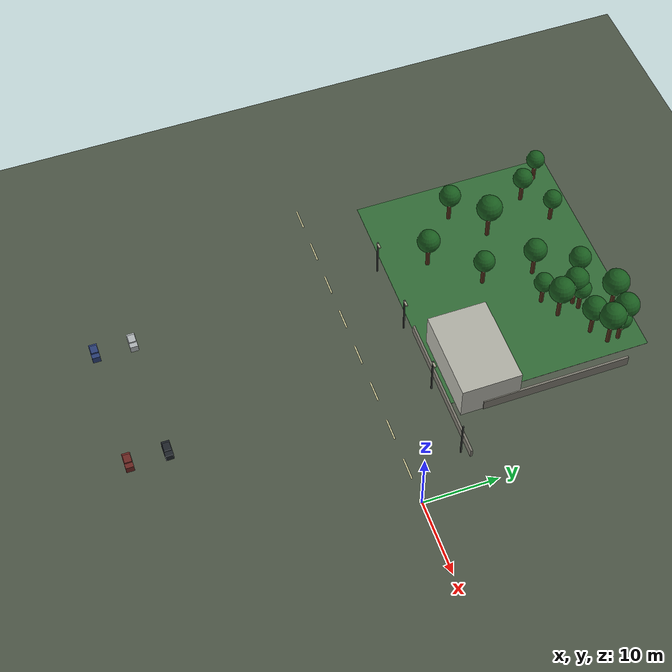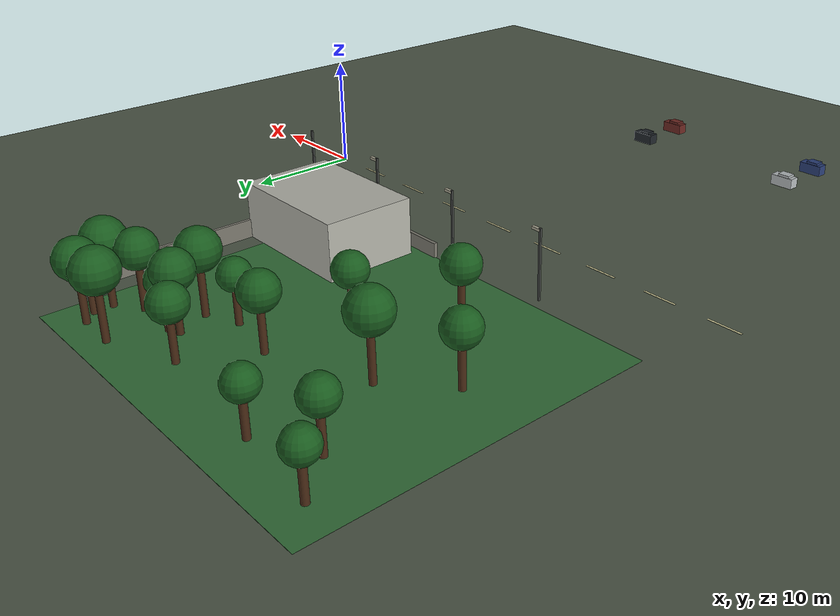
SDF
<sdf version="1.9">
 <world name="gsi_search_world_v2_suburban">
  <model name="ground_plane">
   <static>true</static>
   <link name="link">
    <collision name="collision">
     <geometry><plane><normal>0 0 1</normal><size>130 110</size></plane></geometry>
    </collision>
    <visual name="visual">
     <geometry><plane><normal>0 0 1</normal><size>130 110</size></plane></geometry>
     <material>
      <ambient>0.3 0.34 0.28 1</ambient>
      <diffuse>0.3 0.34 0.28 1</diffuse>
      <specular>0.12 0.12 0.12 1</specular>
     </material>
    </visual>
   </link>
  </model>
  <model name="semantic-community-park">
   <static>true</static>
   <pose>-29 22 0.015 0 0 0</pose>
   <link name="link">
    <visual name="visual">
     <geometry><box><size>34 28 0.02</size></box></geometry>
     <cast_shadows>false</cast_shadows>
     <material>
      <ambient>0.2 0.43 0.22 1</ambient>
      <diffuse>0.2 0.43 0.22 1</diffuse>
      <specular>0.12 0.12 0.12 1</specular>
     </material>
    </visual>
   </link>
  </model>
  <model name="main-street-marking-01">
   <static>true</static>
   <pose>-47 0 0.04 0 0 0</pose>
   <link name="link">
    <visual name="visual">
     <geometry><box><size>3 0.18 0.025</size></box></geometry>
     <cast_shadows>false</cast_shadows>
     <material>
      <ambient>0.92 0.9 0.68 1</ambient>
      <diffuse>0.92 0.9 0.68 1</diffuse>
      <specular>0.12 0.12 0.12 1</specular>
     </material>
    </visual>
   </link>
  </model>
  <model name="main-street-marking-02">
   <static>true</static>
   <pose>-41 0 0.04 0 0 0</pose>
   <link name="link">
    <visual name="visual">
     <geometry><box><size>3 0.18 0.025</size></box></geometry>
     <cast_shadows>false</cast_shadows>
     <material>
      <ambient>0.92 0.9 0.68 1</ambient>
      <diffuse>0.92 0.9 0.68 1</diffuse>
      <specular>0.12 0.12 0.12 1</specular>
     </material>
    </visual>
   </link>
  </model>
  <model name="main-street-marking-03">
   <static>true</static>
   <pose>-35 0 0.04 0 0 0</pose>
   <link name="link">
    <visual name="visual">
     <geometry><box><size>3 0.18 0.025</size></box></geometry>
     <cast_shadows>false</cast_shadows>
     <material>
      <ambient>0.92 0.9 0.68 1</ambient>
      <diffuse>0.92 0.9 0.68 1</diffuse>
      <specular>0.12 0.12 0.12 1</specular>
     </material>
    </visual>
   </link>
  </model>
  <model name="main-street-marking-04">
   <static>true</static>
   <pose>-29 0 0.04 0 0 0</pose>
   <link name="link">
    <visual name="visual">
     <geometry><box><size>3 0.18 0.025</size></box></geometry>
     <cast_shadows>false</cast_shadows>
     <material>
      <ambient>0.92 0.9 0.68 1</ambient>
      <diffuse>0.92 0.9 0.68 1</diffuse>
      <specular>0.12 0.12 0.12 1</specular>
     </material>
    </visual>
   </link>
  </model>
  <model name="main-street-marking-05">
   <static>true</static>
   <pose>-23 0 0.04 0 0 0</pose>
   <link name="link">
    <visual name="visual">
     <geometry><box><size>3 0.18 0.025</size></box></geometry>
     <cast_shadows>false</cast_shadows>
     <material>
      <ambient>0.92 0.9 0.68 1</ambient>
      <diffuse>0.92 0.9 0.68 1</diffuse>
      <specular>0.12 0.12 0.12 1</specular>
     </material>
    </visual>
   </link>
  </model>
  <model name="main-street-marking-06">
   <static>true</static>
   <pose>-17 0 0.04 0 0 0</pose>
   <link name="link">
    <visual name="visual">
     <geometry><box><size>3 0.18 0.025</size></box></geometry>
     <cast_shadows>false</cast_shadows>
     <material>
      <ambient>0.92 0.9 0.68 1</ambient>
      <diffuse>0.92 0.9 0.68 1</diffuse>
      <specular>0.12 0.12 0.12 1</specular>
     </material>
    </visual>
   </link>
  </model>
  <model name="main-street-marking-07">
   <static>true</static>
   <pose>-11 0 0.04 0 0 0</pose>
   <link name="link">
    <visual name="visual">
     <geometry><box><size>3 0.18 0.025</size></box></geometry>
     <cast_shadows>false</cast_shadows>
     <material>
      <ambient>0.92 0.9 0.68 1</ambient>
      <diffuse>0.92 0.9 0.68 1</diffuse>
      <specular>0.12 0.12 0.12 1</specular>
     </material>
    </visual>
   </link>
  </model>
  <model name="main-street-marking-08">
   <static>true</static>
   <pose>-5 0 0.04 0 0 0</pose>
   <link name="link">
    <visual name="visual">
     <geometry><box><size>3 0.18 0.025</size></box></geometry>
     <cast_shadows>false</cast_shadows>
     <material>
      <ambient>0.92 0.9 0.68 1</ambient>
      <diffuse>0.92 0.9 0.68 1</diffuse>
      <specular>0.12 0.12 0.12 1</specular>
     </material>
    </visual>
   </link>
  </model>
  <model name="clinic">
   <static>true</static>
   <pose>-16 13 2.5 0 0 0</pose>
   <link name="link">
    <collision name="collision"><geometry><box><size>12 8 5</size></box></geometry></collision>
    <visual name="visual">
     <geometry><box><size>12 8 5</size></box></geometry>
     <material>
      <ambient>0.7 0.7 0.66 1</ambient>
      <diffuse>0.7 0.7 0.66 1</diffuse>
      <specular>0.12 0.12 0.12 1</specular>
     </material>
    </visual>
   </link>
  </model>
  <model name="tree-01">
   <static>true</static>
   <pose>-43.0503 33.2513 0 0 0 0</pose>
   <link name="tree">
    <collision name="trunk_collision">
     <pose>0 0 1.77965 0 0 0</pose>
     <geometry><cylinder><radius>0.32</radius><length>3.5593</length></cylinder></geometry>
    </collision>
    <visual name="trunk">
     <pose>0 0 1.77965 0 0 0</pose>
     <geometry><cylinder><radius>0.28</radius><length>3.5593</length></cylinder></geometry>
     <material>
      <ambient>0.28 0.16 0.08 1</ambient>
      <diffuse>0.28 0.16 0.08 1</diffuse>
      <specular>0.12 0.12 0.12 1</specular>
     </material>
    </visual>
    <visual name="canopy">
     <pose>0 0 3.96608 0 0 0</pose>
     <geometry><sphere><radius>1.27118</radius></sphere></geometry>
     <material>
      <ambient>0.1 0.36 0.12 1</ambient>
      <diffuse>0.1 0.36 0.12 1</diffuse>
      <specular>0.12 0.12 0.12 1</specular>
     </material>
    </visual>
   </link>
  </model>
  <model name="tree-02">
   <static>true</static>
   <pose>-14.1679 32.7218 0 0 0 0</pose>
   <link name="tree">
    <collision name="trunk_collision">
     <pose>0 0 1.84661 0 0 0</pose>
     <geometry><cylinder><radius>0.32</radius><length>3.69322</length></cylinder></geometry>
    </collision>
    <visual name="trunk">
     <pose>0 0 1.84661 0 0 0</pose>
     <geometry><cylinder><radius>0.28</radius><length>3.69322</length></cylinder></geometry>
     <material>
      <ambient>0.28 0.16 0.08 1</ambient>
      <diffuse>0.28 0.16 0.08 1</diffuse>
      <specular>0.12 0.12 0.12 1</specular>
     </material>
    </visual>
    <visual name="canopy">
     <pose>0 0 4.1153 0 0 0</pose>
     <geometry><sphere><radius>1.31901</radius></sphere></geometry>
     <material>
      <ambient>0.1 0.36 0.12 1</ambient>
      <diffuse>0.1 0.36 0.12 1</diffuse>
      <specular>0.12 0.12 0.12 1</specular>
     </material>
    </visual>
   </link>
  </model>
  <model name="tree-03">
   <static>true</static>
   <pose>-28.512 19.5587 0 0 0 0</pose>
   <link name="tree">
    <collision name="trunk_collision">
     <pose>0 0 2.00519 0 0 0</pose>
     <geometry><cylinder><radius>0.32</radius><length>4.01039</length></cylinder></geometry>
    </collision>
    <visual name="trunk">
     <pose>0 0 2.00519 0 0 0</pose>
     <geometry><cylinder><radius>0.28</radius><length>4.01039</length></cylinder></geometry>
     <material>
      <ambient>0.28 0.16 0.08 1</ambient>
      <diffuse>0.28 0.16 0.08 1</diffuse>
      <specular>0.12 0.12 0.12 1</specular>
     </material>
    </visual>
    <visual name="canopy">
     <pose>0 0 4.46872 0 0 0</pose>
     <geometry><sphere><radius>1.43228</radius></sphere></geometry>
     <material>
      <ambient>0.1 0.36 0.12 1</ambient>
      <diffuse>0.1 0.36 0.12 1</diffuse>
      <specular>0.12 0.12 0.12 1</specular>
     </material>
    </visual>
   </link>
  </model>
  <model name="tree-04">
   <static>true</static>
   <pose>-20.3094 29.8655 0 0 0 0</pose>
   <link name="tree">
    <collision name="trunk_collision">
     <pose>0 0 1.84437 0 0 0</pose>
     <geometry><cylinder><radius>0.32</radius><length>3.68873</length></cylinder></geometry>
    </collision>
    <visual name="trunk">
     <pose>0 0 1.84437 0 0 0</pose>
     <geometry><cylinder><radius>0.28</radius><length>3.68873</length></cylinder></geometry>
     <material>
      <ambient>0.28 0.16 0.08 1</ambient>
      <diffuse>0.28 0.16 0.08 1</diffuse>
      <specular>0.12 0.12 0.12 1</specular>
     </material>
    </visual>
    <visual name="canopy">
     <pose>0 0 4.1103 0 0 0</pose>
     <geometry><sphere><radius>1.3174</radius></sphere></geometry>
     <material>
      <ambient>0.1 0.36 0.12 1</ambient>
      <diffuse>0.1 0.36 0.12 1</diffuse>
      <specular>0.12 0.12 0.12 1</specular>
     </material>
    </visual>
   </link>
  </model>
  <model name="tree-05">
   <static>true</static>
   <pose>-27.6826 26.4642 0 0 0 0</pose>
   <link name="tree">
    <collision name="trunk_collision">
     <pose>0 0 2.19856 0 0 0</pose>
     <geometry><cylinder><radius>0.32</radius><length>4.39712</length></cylinder></geometry>
    </collision>
    <visual name="trunk">
     <pose>0 0 2.19856 0 0 0</pose>
     <geometry><cylinder><radius>0.28</radius><length>4.39712</length></cylinder></geometry>
     <material>
      <ambient>0.28 0.16 0.08 1</ambient>
      <diffuse>0.28 0.16 0.08 1</diffuse>
      <specular>0.12 0.12 0.12 1</specular>
     </material>
    </visual>
    <visual name="canopy">
     <pose>0 0 4.89965 0 0 0</pose>
     <geometry><sphere><radius>1.5704</radius></sphere></geometry>
     <material>
      <ambient>0.1 0.36 0.12 1</ambient>
      <diffuse>0.1 0.36 0.12 1</diffuse>
      <specular>0.12 0.12 0.12 1</specular>
     </material>
    </visual>
   </link>
  </model>
  <model name="tree-06">
   <static>true</static>
   <pose>-40.3562 19.3867 0 0 0 0</pose>
   <link name="tree">
    <collision name="trunk_collision">
     <pose>0 0 2.09253 0 0 0</pose>
     <geometry><cylinder><radius>0.32</radius><length>4.18506</length></cylinder></geometry>
    </collision>
    <visual name="trunk">
     <pose>0 0 2.09253 0 0 0</pose>
     <geometry><cylinder><radius>0.28</radius><length>4.18506</length></cylinder></geometry>
     <material>
      <ambient>0.28 0.16 0.08 1</ambient>
      <diffuse>0.28 0.16 0.08 1</diffuse>
      <specular>0.12 0.12 0.12 1</specular>
     </material>
    </visual>
    <visual name="canopy">
     <pose>0 0 4.66335 0 0 0</pose>
     <geometry><sphere><radius>1.49466</radius></sphere></geometry>
     <material>
      <ambient>0.1 0.36 0.12 1</ambient>
      <diffuse>0.1 0.36 0.12 1</diffuse>
      <specular>0.12 0.12 0.12 1</specular>
     </material>
    </visual>
   </link>
  </model>
  <model name="tree-07">
   <static>true</static>
   <pose>-16.2769 29.7383 0 0 0 0</pose>
   <link name="tree">
    <collision name="trunk_collision">
     <pose>0 0 2.28356 0 0 0</pose>
     <geometry><cylinder><radius>0.32</radius><length>4.56713</length></cylinder></geometry>
    </collision>
    <visual name="trunk">
     <pose>0 0 2.28356 0 0 0</pose>
     <geometry><cylinder><radius>0.28</radius><length>4.56713</length></cylinder></geometry>
     <material>
      <ambient>0.28 0.16 0.08 1</ambient>
      <diffuse>0.28 0.16 0.08 1</diffuse>
      <specular>0.12 0.12 0.12 1</specular>
     </material>
    </visual>
    <visual name="canopy">
     <pose>0 0 5.08909 0 0 0</pose>
     <geometry><sphere><radius>1.63112</radius></sphere></geometry>
     <material>
      <ambient>0.1 0.36 0.12 1</ambient>
      <diffuse>0.1 0.36 0.12 1</diffuse>
      <specular>0.12 0.12 0.12 1</specular>
     </material>
    </visual>
   </link>
  </model>
  <model name="tree-08">
   <static>true</static>
   <pose>-35.5944 32.5297 0 0 0 0</pose>
   <link name="tree">
    <collision name="trunk_collision">
     <pose>0 0 1.81568 0 0 0</pose>
     <geometry><cylinder><radius>0.32</radius><length>3.63136</length></cylinder></geometry>
    </collision>
    <visual name="trunk">
     <pose>0 0 1.81568 0 0 0</pose>
     <geometry><cylinder><radius>0.28</radius><length>3.63136</length></cylinder></geometry>
     <material>
      <ambient>0.28 0.16 0.08 1</ambient>
      <diffuse>0.28 0.16 0.08 1</diffuse>
      <specular>0.12 0.12 0.12 1</specular>
     </material>
    </visual>
    <visual name="canopy">
     <pose>0 0 4.04637 0 0 0</pose>
     <geometry><sphere><radius>1.29691</radius></sphere></geometry>
     <material>
      <ambient>0.1 0.36 0.12 1</ambient>
      <diffuse>0.1 0.36 0.12 1</diffuse>
      <specular>0.12 0.12 0.12 1</specular>
     </material>
    </visual>
   </link>
  </model>
  <model name="tree-09">
   <static>true</static>
   <pose>-33.8652 13.7672 0 0 0 0</pose>
   <link name="tree">
    <collision name="trunk_collision">
     <pose>0 0 2.19346 0 0 0</pose>
     <geometry><cylinder><radius>0.32</radius><length>4.38692</length></cylinder></geometry>
    </collision>
    <visual name="trunk">
     <pose>0 0 2.19346 0 0 0</pose>
     <geometry><cylinder><radius>0.28</radius><length>4.38692</length></cylinder></geometry>
     <material>
      <ambient>0.28 0.16 0.08 1</ambient>
      <diffuse>0.28 0.16 0.08 1</diffuse>
      <specular>0.12 0.12 0.12 1</specular>
     </material>
    </visual>
    <visual name="canopy">
     <pose>0 0 4.88828 0 0 0</pose>
     <geometry><sphere><radius>1.56676</radius></sphere></geometry>
     <material>
      <ambient>0.1 0.36 0.12 1</ambient>
      <diffuse>0.1 0.36 0.12 1</diffuse>
      <specular>0.12 0.12 0.12 1</specular>
     </material>
    </visual>
   </link>
  </model>
  <model name="tree-10">
   <static>true</static>
   <pose>-20.1309 26.8435 0 0 0 0</pose>
   <link name="tree">
    <collision name="trunk_collision">
     <pose>0 0 2.44356 0 0 0</pose>
     <geometry><cylinder><radius>0.32</radius><length>4.88713</length></cylinder></geometry>
    </collision>
    <visual name="trunk">
     <pose>0 0 2.44356 0 0 0</pose>
     <geometry><cylinder><radius>0.28</radius><length>4.88713</length></cylinder></geometry>
     <material>
      <ambient>0.28 0.16 0.08 1</ambient>
      <diffuse>0.28 0.16 0.08 1</diffuse>
      <specular>0.12 0.12 0.12 1</specular>
     </material>
    </visual>
    <visual name="canopy">
     <pose>0 0 5.44566 0 0 0</pose>
     <geometry><sphere><radius>1.7454</radius></sphere></geometry>
     <material>
      <ambient>0.1 0.36 0.12 1</ambient>
      <diffuse>0.1 0.36 0.12 1</diffuse>
      <specular>0.12 0.12 0.12 1</specular>
     </material>
    </visual>
   </link>
  </model>
  <model name="tree-11">
   <static>true</static>
   <pose>-22.927 25.6755 0 0 0 0</pose>
   <link name="tree">
    <collision name="trunk_collision">
     <pose>0 0 1.83906 0 0 0</pose>
     <geometry><cylinder><radius>0.32</radius><length>3.67812</length></cylinder></geometry>
    </collision>
    <visual name="trunk">
     <pose>0 0 1.83906 0 0 0</pose>
     <geometry><cylinder><radius>0.28</radius><length>3.67812</length></cylinder></geometry>
     <material>
      <ambient>0.28 0.16 0.08 1</ambient>
      <diffuse>0.28 0.16 0.08 1</diffuse>
      <specular>0.12 0.12 0.12 1</specular>
     </material>
    </visual>
    <visual name="canopy">
     <pose>0 0 4.09848 0 0 0</pose>
     <geometry><sphere><radius>1.31361</radius></sphere></geometry>
     <material>
      <ambient>0.1 0.36 0.12 1</ambient>
      <diffuse>0.1 0.36 0.12 1</diffuse>
      <specular>0.12 0.12 0.12 1</specular>
     </material>
    </visual>
   </link>
  </model>
  <model name="tree-12">
   <static>true</static>
   <pose>-15.2444 33.7716 0 0 0 0</pose>
   <link name="tree">
    <collision name="trunk_collision">
     <pose>0 0 2.34427 0 0 0</pose>
     <geometry><cylinder><radius>0.32</radius><length>4.68854</length></cylinder></geometry>
    </collision>
    <visual name="trunk">
     <pose>0 0 2.34427 0 0 0</pose>
     <geometry><cylinder><radius>0.28</radius><length>4.68854</length></cylinder></geometry>
     <material>
      <ambient>0.28 0.16 0.08 1</ambient>
      <diffuse>0.28 0.16 0.08 1</diffuse>
      <specular>0.12 0.12 0.12 1</specular>
     </material>
    </visual>
    <visual name="canopy">
     <pose>0 0 5.22437 0 0 0</pose>
     <geometry><sphere><radius>1.67448</radius></sphere></geometry>
     <material>
      <ambient>0.1 0.36 0.12 1</ambient>
      <diffuse>0.1 0.36 0.12 1</diffuse>
      <specular>0.12 0.12 0.12 1</specular>
     </material>
    </visual>
   </link>
  </model>
  <model name="tree-13">
   <static>true</static>
   <pose>-14.0902 31.2052 0 0 0 0</pose>
   <link name="tree">
    <collision name="trunk_collision">
     <pose>0 0 2.49613 0 0 0</pose>
     <geometry><cylinder><radius>0.32</radius><length>4.99226</length></cylinder></geometry>
    </collision>
    <visual name="trunk">
     <pose>0 0 2.49613 0 0 0</pose>
     <geometry><cylinder><radius>0.28</radius><length>4.99226</length></cylinder></geometry>
     <material>
      <ambient>0.28 0.16 0.08 1</ambient>
      <diffuse>0.28 0.16 0.08 1</diffuse>
      <specular>0.12 0.12 0.12 1</specular>
     </material>
    </visual>
    <visual name="canopy">
     <pose>0 0 5.56281 0 0 0</pose>
     <geometry><sphere><radius>1.78295</radius></sphere></geometry>
     <material>
      <ambient>0.1 0.36 0.12 1</ambient>
      <diffuse>0.1 0.36 0.12 1</diffuse>
      <specular>0.12 0.12 0.12 1</specular>
     </material>
    </visual>
   </link>
  </model>
  <model name="tree-14">
   <static>true</static>
   <pose>-21.2954 29.4834 0 0 0 0</pose>
   <link name="tree">
    <collision name="trunk_collision">
     <pose>0 0 2.30057 0 0 0</pose>
     <geometry><cylinder><radius>0.32</radius><length>4.60114</length></cylinder></geometry>
    </collision>
    <visual name="trunk">
     <pose>0 0 2.30057 0 0 0</pose>
     <geometry><cylinder><radius>0.28</radius><length>4.60114</length></cylinder></geometry>
     <material>
      <ambient>0.28 0.16 0.08 1</ambient>
      <diffuse>0.28 0.16 0.08 1</diffuse>
      <specular>0.12 0.12 0.12 1</specular>
     </material>
    </visual>
    <visual name="canopy">
     <pose>0 0 5.12699 0 0 0</pose>
     <geometry><sphere><radius>1.64327</radius></sphere></geometry>
     <material>
      <ambient>0.1 0.36 0.12 1</ambient>
      <diffuse>0.1 0.36 0.12 1</diffuse>
      <specular>0.12 0.12 0.12 1</specular>
     </material>
    </visual>
   </link>
  </model>
  <model name="tree-15">
   <static>true</static>
   <pose>-40.1709 30.0954 0 0 0 0</pose>
   <link name="tree">
    <collision name="trunk_collision">
     <pose>0 0 1.94504 0 0 0</pose>
     <geometry><cylinder><radius>0.32</radius><length>3.89009</length></cylinder></geometry>
    </collision>
    <visual name="trunk">
     <pose>0 0 1.94504 0 0 0</pose>
     <geometry><cylinder><radius>0.28</radius><length>3.89009</length></cylinder></geometry>
     <material>
      <ambient>0.28 0.16 0.08 1</ambient>
      <diffuse>0.28 0.16 0.08 1</diffuse>
      <specular>0.12 0.12 0.12 1</specular>
     </material>
    </visual>
    <visual name="canopy">
     <pose>0 0 4.33467 0 0 0</pose>
     <geometry><sphere><radius>1.38932</radius></sphere></geometry>
     <material>
      <ambient>0.1 0.36 0.12 1</ambient>
      <diffuse>0.1 0.36 0.12 1</diffuse>
      <specular>0.12 0.12 0.12 1</specular>
     </material>
    </visual>
   </link>
  </model>
  <model name="tree-16">
   <static>true</static>
   <pose>-24.6898 31.5837 0 0 0 0</pose>
   <link name="tree">
    <collision name="trunk_collision">
     <pose>0 0 2.09296 0 0 0</pose>
     <geometry><cylinder><radius>0.32</radius><length>4.18593</length></cylinder></geometry>
    </collision>
    <visual name="trunk">
     <pose>0 0 2.09296 0 0 0</pose>
     <geometry><cylinder><radius>0.28</radius><length>4.18593</length></cylinder></geometry>
     <material>
      <ambient>0.28 0.16 0.08 1</ambient>
      <diffuse>0.28 0.16 0.08 1</diffuse>
      <specular>0.12 0.12 0.12 1</specular>
     </material>
    </visual>
    <visual name="canopy">
     <pose>0 0 4.66432 0 0 0</pose>
     <geometry><sphere><radius>1.49497</radius></sphere></geometry>
     <material>
      <ambient>0.1 0.36 0.12 1</ambient>
      <diffuse>0.1 0.36 0.12 1</diffuse>
      <specular>0.12 0.12 0.12 1</specular>
     </material>
    </visual>
   </link>
  </model>
  <model name="tree-17">
   <static>true</static>
   <pose>-35.8875 23.2797 0 0 0 0</pose>
   <link name="tree">
    <collision name="trunk_collision">
     <pose>0 0 2.49452 0 0 0</pose>
     <geometry><cylinder><radius>0.32</radius><length>4.98904</length></cylinder></geometry>
    </collision>
    <visual name="trunk">
     <pose>0 0 2.49452 0 0 0</pose>
     <geometry><cylinder><radius>0.28</radius><length>4.98904</length></cylinder></geometry>
     <material>
      <ambient>0.28 0.16 0.08 1</ambient>
      <diffuse>0.28 0.16 0.08 1</diffuse>
      <specular>0.12 0.12 0.12 1</specular>
     </material>
    </visual>
    <visual name="canopy">
     <pose>0 0 5.55921 0 0 0</pose>
     <geometry><sphere><radius>1.7818</radius></sphere></geometry>
     <material>
      <ambient>0.1 0.36 0.12 1</ambient>
      <diffuse>0.1 0.36 0.12 1</diffuse>
      <specular>0.12 0.12 0.12 1</specular>
     </material>
    </visual>
   </link>
  </model>
  <model name="tree-18">
   <static>true</static>
   <pose>-18.7747 33.8525 0 0 0 0</pose>
   <link name="tree">
    <collision name="trunk_collision">
     <pose>0 0 2.52821 0 0 0</pose>
     <geometry><cylinder><radius>0.32</radius><length>5.05642</length></cylinder></geometry>
    </collision>
    <visual name="trunk">
     <pose>0 0 2.52821 0 0 0</pose>
     <geometry><cylinder><radius>0.28</radius><length>5.05642</length></cylinder></geometry>
     <material>
      <ambient>0.28 0.16 0.08 1</ambient>
      <diffuse>0.28 0.16 0.08 1</diffuse>
      <specular>0.12 0.12 0.12 1</specular>
     </material>
    </visual>
    <visual name="canopy">
     <pose>0 0 5.6343 0 0 0</pose>
     <geometry><sphere><radius>1.80587</radius></sphere></geometry>
     <material>
      <ambient>0.1 0.36 0.12 1</ambient>
      <diffuse>0.1 0.36 0.12 1</diffuse>
      <specular>0.12 0.12 0.12 1</specular>
     </material>
    </visual>
   </link>
  </model>
  <model name="parked-vehicle-01">
   <static>true</static>
   <pose>-34.4 -32 0 0 0 0</pose>
   <link name="body">
    <collision name="body_collision">
     <pose>0 0 0.5 0 0 0</pose>
     <geometry><box><size>2.2 1.05 1.0</size></box></geometry>
    </collision>
    <visual name="body_visual">
     <pose>0 0 0.5 0 0 0</pose>
     <geometry><box><size>2.2 1.05 1.0</size></box></geometry>
     <material>
      <ambient>0.16 0.24 0.46 1</ambient>
      <diffuse>0.16 0.24 0.46 1</diffuse>
      <specular>0.12 0.12 0.12 1</specular>
     </material>
    </visual>
    <visual name="roof">
     <pose>-0.15 0 1.05 0 0 0</pose>
     <geometry><box><size>1.15 0.94 0.35</size></box></geometry>
     <material>
      <ambient>0.16 0.24 0.46 1</ambient>
      <diffuse>0.16 0.24 0.46 1</diffuse>
      <specular>0.12 0.12 0.12 1</specular>
     </material>
    </visual>
   </link>
  </model>
  <model name="parked-vehicle-02">
   <static>true</static>
   <pose>-34.4 -27 0 0 0 0</pose>
   <link name="body">
    <collision name="body_collision">
     <pose>0 0 0.5 0 0 0</pose>
     <geometry><box><size>2.2 1.05 1.0</size></box></geometry>
    </collision>
    <visual name="body_visual">
     <pose>0 0 0.5 0 0 0</pose>
     <geometry><box><size>2.2 1.05 1.0</size></box></geometry>
     <material>
      <ambient>0.7 0.72 0.73 1</ambient>
      <diffuse>0.7 0.72 0.73 1</diffuse>
      <specular>0.12 0.12 0.12 1</specular>
     </material>
    </visual>
    <visual name="roof">
     <pose>-0.15 0 1.05 0 0 0</pose>
     <geometry><box><size>1.15 0.94 0.35</size></box></geometry>
     <material>
      <ambient>0.7 0.72 0.73 1</ambient>
      <diffuse>0.7 0.72 0.73 1</diffuse>
      <specular>0.12 0.12 0.12 1</specular>
     </material>
    </visual>
   </link>
  </model>
  <model name="parked-vehicle-03">
   <static>true</static>
   <pose>-17.2 -32 0 0 0 0</pose>
   <link name="body">
    <collision name="body_collision">
     <pose>0 0 0.5 0 0 0</pose>
     <geometry><box><size>2.2 1.05 1.0</size></box></geometry>
    </collision>
    <visual name="body_visual">
     <pose>0 0 0.5 0 0 0</pose>
     <geometry><box><size>2.2 1.05 1.0</size></box></geometry>
     <material>
      <ambient>0.42 0.15 0.13 1</ambient>
      <diffuse>0.42 0.15 0.13 1</diffuse>
      <specular>0.12 0.12 0.12 1</specular>
     </material>
    </visual>
    <visual name="roof">
     <pose>-0.15 0 1.05 0 0 0</pose>
     <geometry><box><size>1.15 0.94 0.35</size></box></geometry>
     <material>
      <ambient>0.42 0.15 0.13 1</ambient>
      <diffuse>0.42 0.15 0.13 1</diffuse>
      <specular>0.12 0.12 0.12 1</specular>
     </material>
    </visual>
   </link>
  </model>
  <model name="parked-vehicle-04">
   <static>true</static>
   <pose>-17.2 -27 0 0 0 0</pose>
   <link name="body">
    <collision name="body_collision">
     <pose>0 0 0.5 0 0 0</pose>
     <geometry><box><size>2.2 1.05 1.0</size></box></geometry>
    </collision>
    <visual name="body_visual">
     <pose>0 0 0.5 0 0 0</pose>
     <geometry><box><size>2.2 1.05 1.0</size></box></geometry>
     <material>
      <ambient>0.12 0.14 0.16 1</ambient>
      <diffuse>0.12 0.14 0.16 1</diffuse>
      <specular>0.12 0.12 0.12 1</specular>
     </material>
    </visual>
    <visual name="roof">
     <pose>-0.15 0 1.05 0 0 0</pose>
     <geometry><box><size>1.15 0.94 0.35</size></box></geometry>
     <material>
      <ambient>0.12 0.14 0.16 1</ambient>
      <diffuse>0.12 0.14 0.16 1</diffuse>
      <specular>0.12 0.12 0.12 1</specular>
     </material>
    </visual>
   </link>
  </model>
  <model name="school-fence">
   <static>true</static>
   <pose>-10 22 0.8 0 0 0</pose>
   <link name="link">
    <collision name="collision"><geometry><box><size>0.3 20 1.6</size></box></geometry></collision>
    <visual name="visual">
     <geometry><box><size>0.3 20 1.6</size></box></geometry>
     <material>
      <ambient>0.48 0.47 0.43 1</ambient>
      <diffuse>0.48 0.47 0.43 1</diffuse>
      <specular>0.12 0.12 0.12 1</specular>
     </material>
    </visual>
   </link>
  </model>
  <model name="park-fence">
   <static>true</static>
   <pose>-14 8 0.65 0 0 0</pose>
   <link name="link">
    <collision name="collision"><geometry><box><size>20 0.3 1.3</size></box></geometry></collision>
    <visual name="visual">
     <geometry><box><size>20 0.3 1.3</size></box></geometry>
     <material>
      <ambient>0.48 0.47 0.43 1</ambient>
      <diffuse>0.48 0.47 0.43 1</diffuse>
      <specular>0.12 0.12 0.12 1</specular>
     </material>
    </visual>
   </link>
  </model>
  <model name="utility-pole-01">
   <static>true</static>
   <pose>-35 7 3 0 0 0</pose>
   <link name="link">
    <collision name="collision"><geometry><box><size>0.18 0.18 6</size></box></geometry></collision>
    <visual name="visual">
     <geometry><box><size>0.18 0.18 6</size></box></geometry>
     <material>
      <ambient>0.24 0.25 0.24 1</ambient>
      <diffuse>0.24 0.25 0.24 1</diffuse>
      <specular>0.12 0.12 0.12 1</specular>
     </material>
    </visual>
   </link>
  </model>
  <model name="utility-pole-01-lamp">
   <static>true</static>
   <pose>-34.62 7 5.85 0 0 0</pose>
   <link name="link">
    <visual name="visual">
     <geometry><box><size>0.8 0.28 0.22</size></box></geometry>
     <material>
      <ambient>0.66 0.65 0.57 1</ambient>
      <diffuse>0.66 0.65 0.57 1</diffuse>
      <specular>0.12 0.12 0.12 1</specular>
     </material>
    </visual>
   </link>
  </model>
  <model name="utility-pole-02">
   <static>true</static>
   <pose>-25 7 3 0 0 0</pose>
   <link name="link">
    <collision name="collision"><geometry><box><size>0.18 0.18 6</size></box></geometry></collision>
    <visual name="visual">
     <geometry><box><size>0.18 0.18 6</size></box></geometry>
     <material>
      <ambient>0.24 0.25 0.24 1</ambient>
      <diffuse>0.24 0.25 0.24 1</diffuse>
      <specular>0.12 0.12 0.12 1</specular>
     </material>
    </visual>
   </link>
  </model>
  <model name="utility-pole-02-lamp">
   <static>true</static>
   <pose>-24.62 7 5.85 0 0 0</pose>
   <link name="link">
    <visual name="visual">
     <geometry><box><size>0.8 0.28 0.22</size></box></geometry>
     <material>
      <ambient>0.66 0.65 0.57 1</ambient>
      <diffuse>0.66 0.65 0.57 1</diffuse>
      <specular>0.12 0.12 0.12 1</specular>
     </material>
    </visual>
   </link>
  </model>
  <model name="utility-pole-03">
   <static>true</static>
   <pose>-15 7 3 0 0 0</pose>
   <link name="link">
    <collision name="collision"><geometry><box><size>0.18 0.18 6</size></box></geometry></collision>
    <visual name="visual">
     <geometry><box><size>0.18 0.18 6</size></box></geometry>
     <material>
      <ambient>0.24 0.25 0.24 1</ambient>
      <diffuse>0.24 0.25 0.24 1</diffuse>
      <specular>0.12 0.12 0.12 1</specular>
     </material>
    </visual>
   </link>
  </model>
  <model name="utility-pole-03-lamp">
   <static>true</static>
   <pose>-14.62 7 5.85 0 0 0</pose>
   <link name="link">
    <visual name="visual">
     <geometry><box><size>0.8 0.28 0.22</size></box></geometry>
     <material>
      <ambient>0.66 0.65 0.57 1</ambient>
      <diffuse>0.66 0.65 0.57 1</diffuse>
      <specular>0.12 0.12 0.12 1</specular>
     </material>
    </visual>
   </link>
  </model>
  <model name="utility-pole-04">
   <static>true</static>
   <pose>-5 7 3 0 0 0</pose>
   <link name="link">
    <collision name="collision"><geometry><box><size>0.18 0.18 6</size></box></geometry></collision>
    <visual name="visual">
     <geometry><box><size>0.18 0.18 6</size></box></geometry>
     <material>
      <ambient>0.24 0.25 0.24 1</ambient>
      <diffuse>0.24 0.25 0.24 1</diffuse>
      <specular>0.12 0.12 0.12 1</specular>
     </material>
    </visual>
   </link>
  </model>
 </world>
</sdf>
